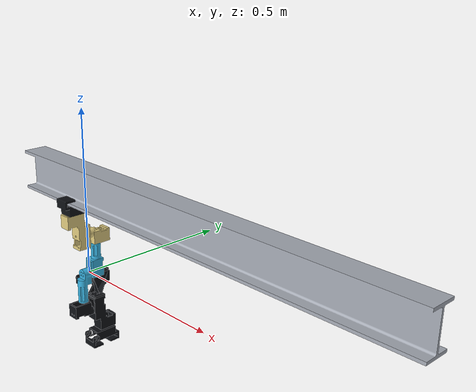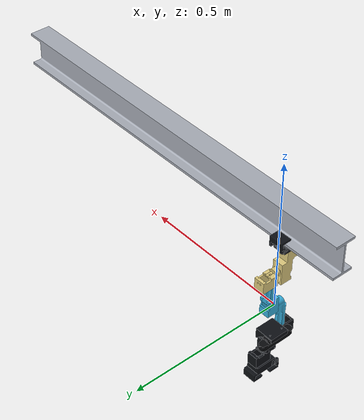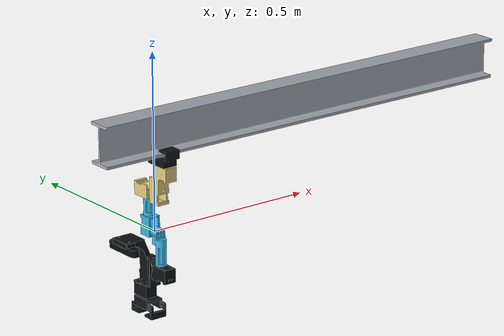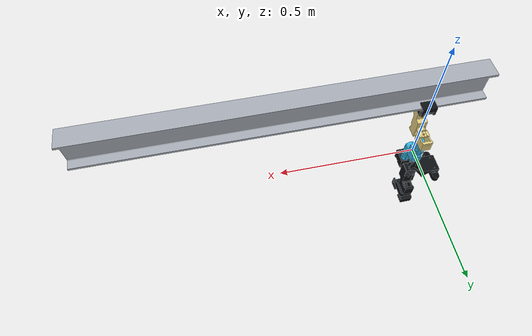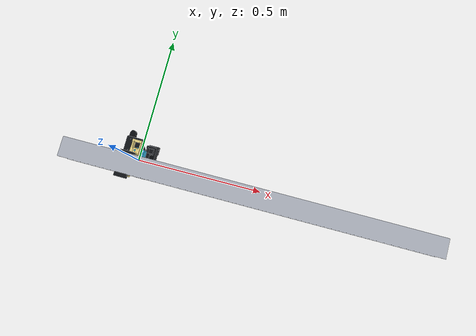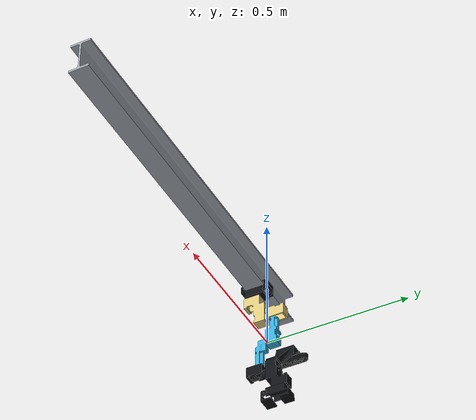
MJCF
<?xml version="1.0" ?>
<mujoco model="inchworm_xs">
  <!-- 모델의 길이는 m, 각도는 rad이다. 로봇 STL은 mm, 빔 STL은 m 원본이며 mesh의 scale로 맞춘다. -->
  <!-- 초기 배치에서 CAD와 월드의 축 관계: $$(x_W, y_W, z_W) = (z_C, y_C, -x_C)$$. -->
  <compiler angle="radian" autolimits="true"/>
  <option timestep="0.002" gravity="0 0 0" integrator="Euler"/>
  <visual>
    <scale framelength="1.000000" framewidth="0.050000"/>
  </visual>
  <default>
    <joint damping="2.0" armature="0.05"/>
    <geom contype="0" conaffinity="0"/>
  </default>
  <asset>
    <mesh name="gripper_L_0_minus_finger" file="meshes/minus_finger.stl" scale="0.001000 0.001000 0.001000"/>
    <mesh name="gripper_L_thumb_0_minus_thumb" file="meshes/minus_thumb.stl" scale="0.001000 0.001000 0.001000"/>
    <mesh name="shoulder_L_0_link1" file="meshes/link1.stl" scale="0.001000 0.001000 0.001000"/>
    <mesh name="upper_L_0_link2" file="meshes/link2.stl" scale="0.001000 0.001000 0.001000"/>
    <mesh name="forearm_L_0_middlelink1" file="meshes/middlelink1.stl" scale="0.001000 0.001000 0.001000"/>
    <mesh name="forearm_R_0_middlelink2" file="meshes/middlelink2.stl" scale="0.001000 0.001000 0.001000"/>
    <mesh name="upper_R_0_link5" file="meshes/link5.stl" scale="0.001000 0.001000 0.001000"/>
    <mesh name="shoulder_R_0_link6" file="meshes/link6.stl" scale="0.001000 0.001000 0.001000"/>
    <mesh name="gripper_R_0_plus_finger" file="meshes/plus_finger.stl" scale="0.001000 0.001000 0.001000"/>
    <mesh name="gripper_R_thumb_0_plus_thumb" file="meshes/plus_thumb.stl" scale="0.001000 0.001000 0.001000"/>
    <mesh name="ibeam_mini_260609_extended" file="meshes/ibeam_mini_260609_extended.stl" scale="1.000000 1.000000 1.000000"/>
    <mesh name="cam_set_xs" file="meshes/cam_set_xs.stl" scale="0.001 0.001 0.001"/>
    <mesh name="gemini_215" file="meshes/gemini_215.stl" scale="0.001 0.001 0.001"/>
  </asset>
  <worldbody>
    <!-- 초기 tip_L의 높이에 하부 플랜지의 안쪽 윗면을 맞춘 배치다. -->
    <body name="ibeam" pos="1.622000 -0.036360 0.433530663050" quat="0.707107 -0.707107 0.000000 0.000000">
      <geom name="ibeam_mesh" type="mesh" mesh="ibeam_mini_260609_extended" pos="-0.532850 0.223500 -0.099870" quat="0.000000 0.707107 0.000000 0.707107" rgba="0.660000 0.680000 0.720000 1.000000" contype="1" conaffinity="1"/>
    </body>
    <body name="gripper_L" pos="0.000000 -0.036360 0.200000" quat="0.000000 0.000000 0.000000 1.000000">
      <!-- 끝단 기준은 회전축과 안쪽 접촉 평면의 교점이며, 위치와 방향은 그리퍼 몸체 기준이다. -->
      <site name="tip_L" pos="0 0 0.041530662041" quat="1 0 0 0" type="sphere" size="0.0015" rgba="0 0.7 1 1"/>
      <inertial pos="0 0 0" mass="0.150000" diaginertia="1.000000e-04 1.000000e-04 1.000000e-04"/>
      <geom name="gripper_L_geom_0" type="mesh" mesh="gripper_L_0_minus_finger" pos="0.000000 -0.036360 -0.200000" quat="0.000000 0.707107 0.000000 -0.707107" rgba="0.055 0.065 0.080 1" contype="0" conaffinity="0"/>
      <body name="gripper_L_thumb" pos="0.000000 -0.038260 0.017381" quat="0.500000 0.500000 -0.500000 -0.500000">
        <!-- CAD 참고 위치(mm): $$(-217.381, 1.9, 0)$$. 실행 좌표는 위 body 변환을 사용한다. -->
        <!-- CAD에서 본 관절 좌표축: $$x=(0,1,0),\ y=(-1,0,0),\ z=(0,0,1)$$. -->
        <joint name="G_L" type="hinge" axis="0.000000 0.000000 1.000000" range="-4.712389 4.712389"/>
        <inertial pos="0 0 0" mass="0.150000" diaginertia="1.000000e-04 1.000000e-04 1.000000e-04"/>
        <geom name="gripper_L_thumb_geom_0" type="mesh" mesh="gripper_L_thumb_0_minus_thumb" pos="-0.001900 -0.217381 0.000000" quat="0.707107 0.000000 0.000000 -0.707107" rgba="0.055 0.065 0.080 1" contype="0" conaffinity="0"/>
      </body>
      <body name="shoulder_L" pos="0.000000 0.000000 0.000000" quat="1.000000 0.000000 0.000000 0.000000">
        <joint name="J1" type="hinge" axis="0.000000 0.000000 1.000000" range="-2.960000 2.960000"/>
        <inertial pos="0 0 0" mass="0.150000" diaginertia="1.000000e-04 1.000000e-04 1.000000e-04"/>
        <geom name="shoulder_L_geom_0" type="mesh" mesh="shoulder_L_0_link1" pos="0.000000 -0.036360 -0.200000" quat="0.000000 0.707107 0.000000 -0.707107" rgba="0.88 0.80 0.50 1" contype="0" conaffinity="0"/>
        <body name="upper_L" pos="0.000000 -0.036360 -0.074200" quat="0.500000 0.500000 0.500000 -0.500000">
          <joint name="J2" type="hinge" axis="0.000000 0.000000 1.000000" range="-2.960000 2.960000"/>
          <inertial pos="0 0 0" mass="0.150000" diaginertia="1.000000e-04 1.000000e-04 1.000000e-04"/>
          <geom name="upper_L_geom_0" type="mesh" mesh="upper_L_0_link2" pos="0.125800 0.000000 0.000000" quat="0.707107 0.707107 0.000000 0.000000" rgba="0.88 0.80 0.50 1" contype="0" conaffinity="0"/>
          <body name="forearm_L" pos="0.036360 0.000000 0.026640" quat="0.000000 0.707107 0.000000 0.707107">
            <joint name="J3" type="hinge" axis="0.000000 0.000000 1.000000" range="-2.960000 2.960000"/>
            <inertial pos="0 0 0" mass="0.150000" diaginertia="1.000000e-04 1.000000e-04 1.000000e-04"/>
            <geom name="forearm_L_geom_0" type="mesh" mesh="forearm_L_0_middlelink1" pos="-0.026640 0.000000 0.089440" quat="-0.500000 0.500000 0.500000 0.500000" rgba="0.22 0.70 0.88 1" contype="0" conaffinity="0"/>
            <body name="forearm_R" pos="-0.026640 0.000000 0.089440" quat="0.707107 0.000000 -0.707107 0.000000">
              <joint name="J4" type="hinge" axis="0.000000 0.000000 1.000000" range="-2.960000 2.960000"/>
              <inertial pos="0 0 0" mass="0.150000" diaginertia="1.000000e-04 1.000000e-04 1.000000e-04"/>
              <geom name="forearm_R_geom_0" type="mesh" mesh="forearm_R_0_middlelink2" pos="0.000000 0.000000 0.000000" quat="0.707107 -0.707107 0.000000 0.000000" rgba="0.22 0.70 0.88 1" contype="0" conaffinity="0"/>
              <body name="upper_R" pos="0.089440 0.000000 0.026640" quat="0.707107 0.000000 -0.707107 0.000000">
                <joint name="J5" type="hinge" axis="0.000000 0.000000 1.000000" range="-2.960000 2.960000"/>
                <inertial pos="0 0 0" mass="0.150000" diaginertia="1.000000e-04 1.000000e-04 1.000000e-04"/>
                <geom name="upper_R_geom_0" type="mesh" mesh="upper_R_0_link5" pos="-0.026640 0.000000 0.089440" quat="-0.500000 0.500000 -0.500000 -0.500000" rgba="0.055 0.065 0.080 1" contype="0" conaffinity="0"/>
                <body name="shoulder_R" pos="-0.026640 0.000000 -0.036360" quat="0.000000 0.707107 0.000000 0.707107">
                  <joint name="J6" type="hinge" axis="0.000000 0.000000 1.000000" range="-2.960000 2.960000"/>
                  <inertial pos="0 0 0" mass="0.150000" diaginertia="1.000000e-04 1.000000e-04 1.000000e-04"/>
                  <geom name="shoulder_R_geom_0" type="mesh" mesh="shoulder_R_0_link6" pos="0.125800 0.000000 0.000000" quat="0.000000 0.000000 0.707107 -0.707107" rgba="0.055 0.065 0.080 1" contype="0" conaffinity="0"/>
                  <!-- 현재 Fusion 아래쪽 앵커와 카메라를 CAD 전역 좌표 그대로 내보내 링크6에 고정한다. -->
                  <!-- 시각화용 형상이므로 기존 링크 관성 및 충돌 설정을 유지한다. -->
                  <geom name="cam_set_xs_visual" type="mesh" mesh="cam_set_xs" pos="0.125800 0 0" quat="0 0 0.707107 -0.707107" rgba="0.055 0.065 0.080 1" mass="0" contype="0" conaffinity="0" group="1"/>
                  <geom name="gemini_215_visual" type="mesh" mesh="gemini_215" pos="0.125800 0 0" quat="0 0 0.707107 -0.707107" rgba="0.035 0.040 0.050 1" mass="0" contype="0" conaffinity="0" group="2"/>
                  <include file="camera_frames.xml"/>
                  <body name="gripper_R" pos="-0.074200 0.000000 -0.036360" quat="-0.500000 0.500000 0.500000 -0.500000">
                    <!-- 끝단 기준은 회전축과 안쪽 접촉 평면의 교점이며, 위치와 방향은 그리퍼 몸체 기준이다. -->
                    <site name="tip_R" pos="0 0 0.041530662041" quat="1 0 0 0" type="sphere" size="0.0015" rgba="1 0.27 0.08 1"/>
                    <joint name="J7" type="hinge" axis="0.000000 0.000000 1.000000" range="-2.960000 2.960000"/>
                    <inertial pos="0 0 0" mass="0.150000" diaginertia="1.000000e-04 1.000000e-04 1.000000e-04"/>
                    <geom name="gripper_R_geom_0" type="mesh" mesh="gripper_R_0_plus_finger" pos="0.000000 -0.036360 -0.200000" quat="0.707107 0.000000 -0.707107 0.000000" rgba="0.055 0.065 0.080 1" contype="0" conaffinity="0"/>
                    <body name="gripper_R_thumb" pos="0.000000 -0.038260 0.017381" quat="0.500000 0.500000 -0.500000 -0.500000">
                      <!-- CAD 참고 위치(mm): $$(217.381, -1.9, 0)$$. 실행 좌표는 위 body 변환을 사용한다. -->
                      <!-- CAD에서 본 관절 좌표축: $$x=(0,-1,0),\ y=(1,0,0),\ z=(0,0,1)$$. -->
                      <joint name="G_R" type="hinge" axis="0.000000 0.000000 1.000000" range="-4.712389 4.712389"/>
                      <inertial pos="0 0 0" mass="0.150000" diaginertia="1.000000e-04 1.000000e-04 1.000000e-04"/>
                      <geom name="gripper_R_thumb_geom_0" type="mesh" mesh="gripper_R_thumb_0_plus_thumb" pos="-0.001900 -0.217381 0.000000" quat="0.707107 0.000000 0.000000 0.707107" rgba="0.055 0.065 0.080 1" contype="0" conaffinity="0"/>
                    </body>
                  </body>
                </body>
              </body>
            </body>
          </body>
        </body>
      </body>
    </body>
  </worldbody>
  <actuator>
    <position name="G_L_pos" joint="G_L" kp="40" ctrlrange="-4.712389 4.712389" forcerange="-200 200"/>
    <position name="J1_pos" joint="J1" kp="40" ctrlrange="-2.960000 2.960000" forcerange="-200 200"/>
    <position name="J2_pos" joint="J2" kp="40" ctrlrange="-2.960000 2.960000" forcerange="-200 200"/>
    <position name="J3_pos" joint="J3" kp="40" ctrlrange="-2.960000 2.960000" forcerange="-200 200"/>
    <position name="J4_pos" joint="J4" kp="40" ctrlrange="-2.960000 2.960000" forcerange="-200 200"/>
    <position name="J5_pos" joint="J5" kp="40" ctrlrange="-2.960000 2.960000" forcerange="-200 200"/>
    <position name="J6_pos" joint="J6" kp="40" ctrlrange="-2.960000 2.960000" forcerange="-200 200"/>
    <position name="J7_pos" joint="J7" kp="40" ctrlrange="-2.960000 2.960000" forcerange="-200 200"/>
    <position name="G_R_pos" joint="G_R" kp="40" ctrlrange="-4.712389 4.712389" forcerange="-200 200"/>
  </actuator>
</mujoco>

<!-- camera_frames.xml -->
<mujocoinclude>
  <!-- CAD 장착 프레임과 저장된 장치 보정값을 결합한다. 자세의 근거와 단위는 camera_frames.yaml에 기록한다. -->
  <body name="camera_frame" pos="0.0660193379596472 0.0637999999999998 -0.0543599999999993" quat="0 -0.707106781186547 0 0.707106781186547">
    <site name="camera_frame" size="0.0006" rgba="0.6 0.6 0.6 1" group="3" />
    <site name="ir1_frame" pos="0.0375 0 -0.0022" quat="1 0 0 0" size="0.0007" rgba="0.1 0.7 1 1" group="3" />
    <site name="ir2_frame" pos="-0.0375 0 -0.0022" quat="1 0 0 0" size="0.0007" rgba="0.1 0.7 1 1" group="3" />
    <site name="depth_frame" pos="-0.0375 0 -0.0022" quat="1 0 0 0" size="0.0007" rgba="0.1 0.7 1 1" group="3" />
    <site name="rgb_frame" pos="-0.0176556307246732 -0.000115653392017779 -0.00136211348397869" quat="0.999993800673586 0.00050698553014139 -0.00328502243228719 0.0011619843750564" size="0.0007" rgba="1 0.4 0.1 1" group="3" />
    <camera name="gemini215_depth" pos="-0.0375 0 -0.0022" quat="0 1 0 0" mode="fixed" resolution="1280 800" sensorsize="1 1" focalpixel="952.550537109375 952.550537109375" principalpixel="-1.44500732421875 1.29861450195312" />
    <camera name="gemini215_rgb" pos="-0.0176556307246732 -0.000115653392017779 -0.00136211348397869" quat="-0.00050698553014139 0.999993800673586 0.0011619843750564 0.00328502243228719" mode="fixed" resolution="1920 1080" sensorsize="1 1" focalpixel="1271.04968261719 1270.61706542969" principalpixel="-2.94635009765625 -3.7303466796875" />
  </body>
</mujocoinclude>
